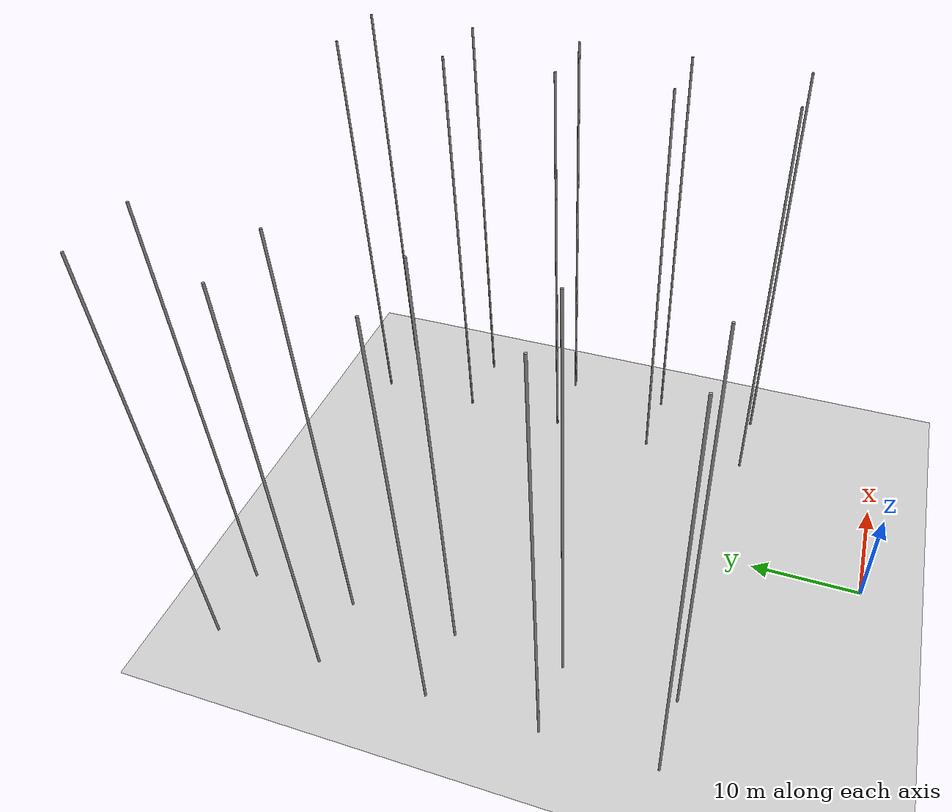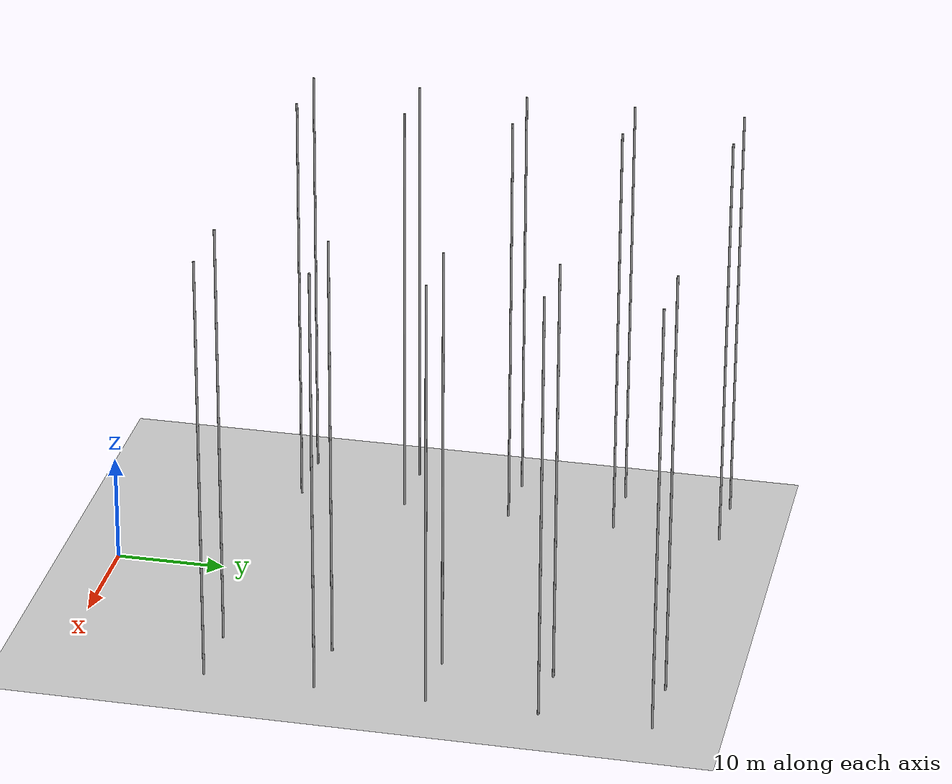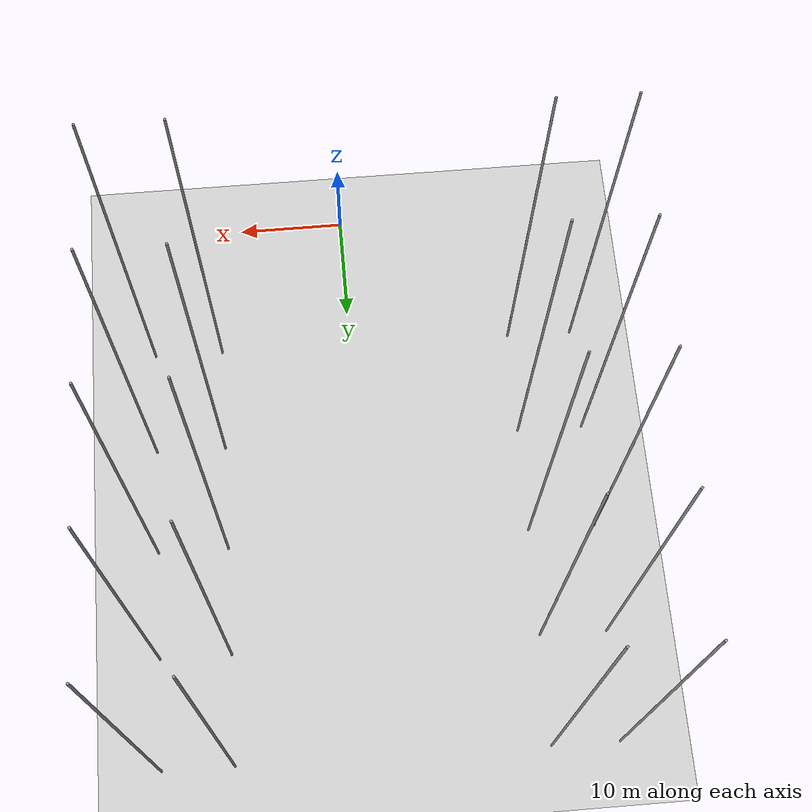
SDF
<sdf version="1.7">
 <world name="default">
  <model name="ground_plane">
   <static>1</static>
   <link name="link">
    <collision name="collision">
     <geometry><plane><normal>0 0 1</normal><size>100 100</size></plane></geometry>
     <surface><friction><ode><mu>100</mu><mu2>50</mu2></ode></friction></surface>
    </collision>
    <visual name="visual">
     <cast_shadows>0</cast_shadows>
     <geometry><plane><normal>0 0 1</normal><size>100 100</size></plane></geometry>
     <material>
      <script><uri>file://media/materials/scripts/gazebo.material</uri><name>Gazebo/Grey</name></script>
     </material>
    </visual>
   </link>
  </model>
  <model name="muchang_s">
   <link name="link_0_clone_clone_0_clone_3">
    <inertial>
     <mass>1</mass>
     <inertia><ixx>0.145833</ixx><ixy>0</ixy><ixz>0</ixz><iyy>0.145833</iyy><iyz>0</iyz><izz>0.125</izz></inertia>
    </inertial>
    <pose>2.77174 57.7468 1.31427 0 -0 0</pose>
    <visual name="visual">
     <geometry><cylinder><radius>0.1</radius><length>40</length></cylinder></geometry>
     <material>
      <lighting>1</lighting>
      <script><uri>file://media/materials/scripts/gazebo.material</uri><name>Gazebo/Grey</name></script>
      <shader type="pixel"><normal_map>__default__</normal_map></shader>
      <ambient>0.3 0.3 0.3 1</ambient>
      <diffuse>0.7 0.7 0.7 1</diffuse>
      <specular>0.01 0.01 0.01 1</specular>
      <emissive>0 0 0 1</emissive>
     </material>
    </visual>
    <collision name="collision">
     <geometry><cylinder><radius>0.1</radius><length>40</length></cylinder></geometry>
     <surface>
      <friction>
       <ode><mu>1</mu><mu2>1</mu2><fdir1>0 0 0</fdir1><slip1>0</slip1><slip2>0</slip2></ode>
       <torsional>
        <coefficient>1</coefficient>
        <patch_radius>0</patch_radius>
        <surface_radius>0</surface_radius>
        <use_patch_radius>1</use_patch_radius>
        <ode><slip>0</slip></ode>
       </torsional>
      </friction>
      <bounce><restitution_coefficient>0</restitution_coefficient><threshold>1e+06</threshold></bounce>
      <contact>
       <collide_without_contact>0</collide_without_contact>
       <collide_without_contact_bitmask>1</collide_without_contact_bitmask>
       <collide_bitmask>1</collide_bitmask>
       <ode>
        <soft_cfm>0</soft_cfm>
        <soft_erp>0.2</soft_erp>
        <kp>1e+13</kp>
        <kd>1</kd>
        <max_vel>0.01</max_vel>
        <min_depth>0</min_depth>
       </ode>
       <bullet>
        <split_impulse>1</split_impulse>
        <split_impulse_penetration_threshold>-0.01</split_impulse_penetration_threshold>
        <soft_cfm>0</soft_cfm>
        <soft_erp>0.2</soft_erp>
        <kp>1e+13</kp>
        <kd>1</kd>
       </bullet>
      </contact>
     </surface>
    </collision>
   </link>
   <link name="link_0_clone_clone_0_clone_4">
    <inertial>
     <mass>1</mass>
     <inertia><ixx>0.145833</ixx><ixy>0</ixy><ixz>0</ixz><iyy>0.145833</iyy><iyz>0</iyz><izz>0.125</izz></inertia>
    </inertial>
    <pose>2.77174 67.7468 1.31427 0 -0 0</pose>
    <visual name="visual">
     <geometry><cylinder><radius>0.1</radius><length>40</length></cylinder></geometry>
     <material>
      <lighting>1</lighting>
      <script><uri>file://media/materials/scripts/gazebo.material</uri><name>Gazebo/Grey</name></script>
      <shader type="pixel"><normal_map>__default__</normal_map></shader>
      <ambient>0.3 0.3 0.3 1</ambient>
      <diffuse>0.7 0.7 0.7 1</diffuse>
      <specular>0.01 0.01 0.01 1</specular>
      <emissive>0 0 0 1</emissive>
     </material>
    </visual>
    <collision name="collision">
     <geometry><cylinder><radius>0.1</radius><length>40</length></cylinder></geometry>
     <surface>
      <friction>
       <ode><mu>1</mu><mu2>1</mu2><fdir1>0 0 0</fdir1><slip1>0</slip1><slip2>0</slip2></ode>
       <torsional>
        <coefficient>1</coefficient>
        <patch_radius>0</patch_radius>
        <surface_radius>0</surface_radius>
        <use_patch_radius>1</use_patch_radius>
        <ode><slip>0</slip></ode>
       </torsional>
      </friction>
      <bounce><restitution_coefficient>0</restitution_coefficient><threshold>1e+06</threshold></bounce>
      <contact>
       <collide_without_contact>0</collide_without_contact>
       <collide_without_contact_bitmask>1</collide_without_contact_bitmask>
       <collide_bitmask>1</collide_bitmask>
       <ode>
        <soft_cfm>0</soft_cfm>
        <soft_erp>0.2</soft_erp>
        <kp>1e+13</kp>
        <kd>1</kd>
        <max_vel>0.01</max_vel>
        <min_depth>0</min_depth>
       </ode>
       <bullet>
        <split_impulse>1</split_impulse>
        <split_impulse_penetration_threshold>-0.01</split_impulse_penetration_threshold>
        <soft_cfm>0</soft_cfm>
        <soft_erp>0.2</soft_erp>
        <kp>1e+13</kp>
        <kd>1</kd>
       </bullet>
      </contact>
     </surface>
    </collision>
   </link>
   <link name="link_0_clone_clone_0_clone_5">
    <inertial>
     <mass>1</mass>
     <inertia><ixx>0.145833</ixx><ixy>0</ixy><ixz>0</ixz><iyy>0.145833</iyy><iyz>0</iyz><izz>0.125</izz></inertia>
    </inertial>
    <pose>2.77174 77.7468 1.31427 0 -0 0</pose>
    <visual name="visual">
     <geometry><cylinder><radius>0.1</radius><length>40</length></cylinder></geometry>
     <material>
      <lighting>1</lighting>
      <script><uri>file://media/materials/scripts/gazebo.material</uri><name>Gazebo/Grey</name></script>
      <shader type="pixel"><normal_map>__default__</normal_map></shader>
      <ambient>0.3 0.3 0.3 1</ambient>
      <diffuse>0.7 0.7 0.7 1</diffuse>
      <specular>0.01 0.01 0.01 1</specular>
      <emissive>0 0 0 1</emissive>
     </material>
    </visual>
    <collision name="collision">
     <geometry><cylinder><radius>0.1</radius><length>40</length></cylinder></geometry>
     <surface>
      <friction>
       <ode><mu>1</mu><mu2>1</mu2><fdir1>0 0 0</fdir1><slip1>0</slip1><slip2>0</slip2></ode>
       <torsional>
        <coefficient>1</coefficient>
        <patch_radius>0</patch_radius>
        <surface_radius>0</surface_radius>
        <use_patch_radius>1</use_patch_radius>
        <ode><slip>0</slip></ode>
       </torsional>
      </friction>
      <bounce><restitution_coefficient>0</restitution_coefficient><threshold>1e+06</threshold></bounce>
      <contact>
       <collide_without_contact>0</collide_without_contact>
       <collide_without_contact_bitmask>1</collide_without_contact_bitmask>
       <collide_bitmask>1</collide_bitmask>
       <ode>
        <soft_cfm>0</soft_cfm>
        <soft_erp>0.2</soft_erp>
        <kp>1e+13</kp>
        <kd>1</kd>
        <max_vel>0.01</max_vel>
        <min_depth>0</min_depth>
       </ode>
       <bullet>
        <split_impulse>1</split_impulse>
        <split_impulse_penetration_threshold>-0.01</split_impulse_penetration_threshold>
        <soft_cfm>0</soft_cfm>
        <soft_erp>0.2</soft_erp>
        <kp>1e+13</kp>
        <kd>1</kd>
       </bullet>
      </contact>
     </surface>
    </collision>
   </link>
   <link name="link_0_clone_clone_0_clone_6">
    <inertial>
     <mass>1</mass>
     <inertia><ixx>0.145833</ixx><ixy>0</ixy><ixz>0</ixz><iyy>0.145833</iyy><iyz>0</iyz><izz>0.125</izz></inertia>
    </inertial>
    <pose>2.77174 87.7468 1.31427 0 -0 0</pose>
    <visual name="visual">
     <geometry><cylinder><radius>0.1</radius><length>40</length></cylinder></geometry>
     <material>
      <lighting>1</lighting>
      <script><uri>file://media/materials/scripts/gazebo.material</uri><name>Gazebo/Grey</name></script>
      <shader type="pixel"><normal_map>__default__</normal_map></shader>
      <ambient>0.3 0.3 0.3 1</ambient>
      <diffuse>0.7 0.7 0.7 1</diffuse>
      <specular>0.01 0.01 0.01 1</specular>
      <emissive>0 0 0 1</emissive>
     </material>
    </visual>
    <collision name="collision">
     <geometry><cylinder><radius>0.1</radius><length>40</length></cylinder></geometry>
     <surface>
      <friction>
       <ode><mu>1</mu><mu2>1</mu2><fdir1>0 0 0</fdir1><slip1>0</slip1><slip2>0</slip2></ode>
       <torsional>
        <coefficient>1</coefficient>
        <patch_radius>0</patch_radius>
        <surface_radius>0</surface_radius>
        <use_patch_radius>1</use_patch_radius>
        <ode><slip>0</slip></ode>
       </torsional>
      </friction>
      <bounce><restitution_coefficient>0</restitution_coefficient><threshold>1e+06</threshold></bounce>
      <contact>
       <collide_without_contact>0</collide_without_contact>
       <collide_without_contact_bitmask>1</collide_without_contact_bitmask>
       <collide_bitmask>1</collide_bitmask>
       <ode>
        <soft_cfm>0</soft_cfm>
        <soft_erp>0.2</soft_erp>
        <kp>1e+13</kp>
        <kd>1</kd>
        <max_vel>0.01</max_vel>
        <min_depth>0</min_depth>
       </ode>
       <bullet>
        <split_impulse>1</split_impulse>
        <split_impulse_penetration_threshold>-0.01</split_impulse_penetration_threshold>
        <soft_cfm>0</soft_cfm>
        <soft_erp>0.2</soft_erp>
        <kp>1e+13</kp>
        <kd>1</kd>
       </bullet>
      </contact>
     </surface>
    </collision>
   </link>
   <link name="link_0_clone_clone_0_clone_7">
    <inertial>
     <mass>1</mass>
     <inertia><ixx>0.145833</ixx><ixy>0</ixy><ixz>0</ixz><iyy>0.145833</iyy><iyz>0</iyz><izz>0.125</izz></inertia>
    </inertial>
    <pose>2.77174 97.7468 1.31427 0 -0 0</pose>
    <visual name="visual">
     <geometry><cylinder><radius>0.1</radius><length>40</length></cylinder></geometry>
     <material>
      <lighting>1</lighting>
      <script><uri>file://media/materials/scripts/gazebo.material</uri><name>Gazebo/Grey</name></script>
      <shader type="pixel"><normal_map>__default__</normal_map></shader>
      <ambient>0.3 0.3 0.3 1</ambient>
      <diffuse>0.7 0.7 0.7 1</diffuse>
      <specular>0.01 0.01 0.01 1</specular>
      <emissive>0 0 0 1</emissive>
     </material>
    </visual>
    <collision name="collision">
     <geometry><cylinder><radius>0.1</radius><length>40</length></cylinder></geometry>
     <surface>
      <friction>
       <ode><mu>1</mu><mu2>1</mu2><fdir1>0 0 0</fdir1><slip1>0</slip1><slip2>0</slip2></ode>
       <torsional>
        <coefficient>1</coefficient>
        <patch_radius>0</patch_radius>
        <surface_radius>0</surface_radius>
        <use_patch_radius>1</use_patch_radius>
        <ode><slip>0</slip></ode>
       </torsional>
      </friction>
      <bounce><restitution_coefficient>0</restitution_coefficient><threshold>1e+06</threshold></bounce>
      <contact>
       <collide_without_contact>0</collide_without_contact>
       <collide_without_contact_bitmask>1</collide_without_contact_bitmask>
       <collide_bitmask>1</collide_bitmask>
       <ode>
        <soft_cfm>0</soft_cfm>
        <soft_erp>0.2</soft_erp>
        <kp>1e+13</kp>
        <kd>1</kd>
        <max_vel>0.01</max_vel>
        <min_depth>0</min_depth>
       </ode>
       <bullet>
        <split_impulse>1</split_impulse>
        <split_impulse_penetration_threshold>-0.01</split_impulse_penetration_threshold>
        <soft_cfm>0</soft_cfm>
        <soft_erp>0.2</soft_erp>
        <kp>1e+13</kp>
        <kd>1</kd>
       </bullet>
      </contact>
     </surface>
    </collision>
   </link>
   <link name="link_0_clone_clone_1_clone_3">
    <inertial>
     <mass>1</mass>
     <inertia><ixx>0.145833</ixx><ixy>0</ixy><ixz>0</ixz><iyy>0.145833</iyy><iyz>0</iyz><izz>0.125</izz></inertia>
    </inertial>
    <pose>-31.6959 57.7468 1.31427 0 -0 0</pose>
    <visual name="visual">
     <geometry><cylinder><radius>0.1</radius><length>40</length></cylinder></geometry>
     <material>
      <lighting>1</lighting>
      <script><uri>file://media/materials/scripts/gazebo.material</uri><name>Gazebo/Grey</name></script>
      <shader type="pixel"><normal_map>__default__</normal_map></shader>
      <ambient>0.3 0.3 0.3 1</ambient>
      <diffuse>0.7 0.7 0.7 1</diffuse>
      <specular>0.01 0.01 0.01 1</specular>
      <emissive>0 0 0 1</emissive>
     </material>
    </visual>
    <collision name="collision">
     <geometry><cylinder><radius>0.1</radius><length>40</length></cylinder></geometry>
     <surface>
      <friction>
       <ode><mu>1</mu><mu2>1</mu2><fdir1>0 0 0</fdir1><slip1>0</slip1><slip2>0</slip2></ode>
       <torsional>
        <coefficient>1</coefficient>
        <patch_radius>0</patch_radius>
        <surface_radius>0</surface_radius>
        <use_patch_radius>1</use_patch_radius>
        <ode><slip>0</slip></ode>
       </torsional>
      </friction>
      <bounce><restitution_coefficient>0</restitution_coefficient><threshold>1e+06</threshold></bounce>
      <contact>
       <collide_without_contact>0</collide_without_contact>
       <collide_without_contact_bitmask>1</collide_without_contact_bitmask>
       <collide_bitmask>1</collide_bitmask>
       <ode>
        <soft_cfm>0</soft_cfm>
        <soft_erp>0.2</soft_erp>
        <kp>1e+13</kp>
        <kd>1</kd>
        <max_vel>0.01</max_vel>
        <min_depth>0</min_depth>
       </ode>
       <bullet>
        <split_impulse>1</split_impulse>
        <split_impulse_penetration_threshold>-0.01</split_impulse_penetration_threshold>
        <soft_cfm>0</soft_cfm>
        <soft_erp>0.2</soft_erp>
        <kp>1e+13</kp>
        <kd>1</kd>
       </bullet>
      </contact>
     </surface>
    </collision>
   </link>
   <link name="link_0_clone_clone_1_clone_4">
    <inertial>
     <mass>1</mass>
     <inertia><ixx>0.145833</ixx><ixy>0</ixy><ixz>0</ixz><iyy>0.145833</iyy><iyz>0</iyz><izz>0.125</izz></inertia>
    </inertial>
    <pose>-31.6959 67.7468 1.31427 0 -0 0</pose>
    <visual name="visual">
     <geometry><cylinder><radius>0.1</radius><length>40</length></cylinder></geometry>
     <material>
      <lighting>1</lighting>
      <script><uri>file://media/materials/scripts/gazebo.material</uri><name>Gazebo/Grey</name></script>
      <shader type="pixel"><normal_map>__default__</normal_map></shader>
      <ambient>0.3 0.3 0.3 1</ambient>
      <diffuse>0.7 0.7 0.7 1</diffuse>
      <specular>0.01 0.01 0.01 1</specular>
      <emissive>0 0 0 1</emissive>
     </material>
    </visual>
    <collision name="collision">
     <geometry><cylinder><radius>0.1</radius><length>40</length></cylinder></geometry>
     <surface>
      <friction>
       <ode><mu>1</mu><mu2>1</mu2><fdir1>0 0 0</fdir1><slip1>0</slip1><slip2>0</slip2></ode>
       <torsional>
        <coefficient>1</coefficient>
        <patch_radius>0</patch_radius>
        <surface_radius>0</surface_radius>
        <use_patch_radius>1</use_patch_radius>
        <ode><slip>0</slip></ode>
       </torsional>
      </friction>
      <bounce><restitution_coefficient>0</restitution_coefficient><threshold>1e+06</threshold></bounce>
      <contact>
       <collide_without_contact>0</collide_without_contact>
       <collide_without_contact_bitmask>1</collide_without_contact_bitmask>
       <collide_bitmask>1</collide_bitmask>
       <ode>
        <soft_cfm>0</soft_cfm>
        <soft_erp>0.2</soft_erp>
        <kp>1e+13</kp>
        <kd>1</kd>
        <max_vel>0.01</max_vel>
        <min_depth>0</min_depth>
       </ode>
       <bullet>
        <split_impulse>1</split_impulse>
        <split_impulse_penetration_threshold>-0.01</split_impulse_penetration_threshold>
        <soft_cfm>0</soft_cfm>
        <soft_erp>0.2</soft_erp>
        <kp>1e+13</kp>
        <kd>1</kd>
       </bullet>
      </contact>
     </surface>
    </collision>
   </link>
   <link name="link_0_clone_clone_1_clone_5">
    <inertial>
     <mass>1</mass>
     <inertia><ixx>0.145833</ixx><ixy>0</ixy><ixz>0</ixz><iyy>0.145833</iyy><iyz>0</iyz><izz>0.125</izz></inertia>
    </inertial>
    <pose>-31.6959 77.7468 1.31427 0 -0 0</pose>
    <visual name="visual">
     <geometry><cylinder><radius>0.1</radius><length>40</length></cylinder></geometry>
     <material>
      <lighting>1</lighting>
      <script><uri>file://media/materials/scripts/gazebo.material</uri><name>Gazebo/Grey</name></script>
      <shader type="pixel"><normal_map>__default__</normal_map></shader>
      <ambient>0.3 0.3 0.3 1</ambient>
      <diffuse>0.7 0.7 0.7 1</diffuse>
      <specular>0.01 0.01 0.01 1</specular>
      <emissive>0 0 0 1</emissive>
     </material>
    </visual>
    <collision name="collision">
     <geometry><cylinder><radius>0.1</radius><length>40</length></cylinder></geometry>
     <surface>
      <friction>
       <ode><mu>1</mu><mu2>1</mu2><fdir1>0 0 0</fdir1><slip1>0</slip1><slip2>0</slip2></ode>
       <torsional>
        <coefficient>1</coefficient>
        <patch_radius>0</patch_radius>
        <surface_radius>0</surface_radius>
        <use_patch_radius>1</use_patch_radius>
        <ode><slip>0</slip></ode>
       </torsional>
      </friction>
      <bounce><restitution_coefficient>0</restitution_coefficient><threshold>1e+06</threshold></bounce>
      <contact>
       <collide_without_contact>0</collide_without_contact>
       <collide_without_contact_bitmask>1</collide_without_contact_bitmask>
       <collide_bitmask>1</collide_bitmask>
       <ode>
        <soft_cfm>0</soft_cfm>
        <soft_erp>0.2</soft_erp>
        <kp>1e+13</kp>
        <kd>1</kd>
        <max_vel>0.01</max_vel>
        <min_depth>0</min_depth>
       </ode>
       <bullet>
        <split_impulse>1</split_impulse>
        <split_impulse_penetration_threshold>-0.01</split_impulse_penetration_threshold>
        <soft_cfm>0</soft_cfm>
        <soft_erp>0.2</soft_erp>
        <kp>1e+13</kp>
        <kd>1</kd>
       </bullet>
      </contact>
     </surface>
    </collision>
   </link>
   <link name="link_0_clone_clone_1_clone_6">
    <inertial>
     <mass>1</mass>
     <inertia><ixx>0.145833</ixx><ixy>0</ixy><ixz>0</ixz><iyy>0.145833</iyy><iyz>0</iyz><izz>0.125</izz></inertia>
    </inertial>
    <pose>-31.6959 87.7468 1.31427 0 -0 0</pose>
    <visual name="visual">
     <geometry><cylinder><radius>0.1</radius><length>40</length></cylinder></geometry>
     <material>
      <lighting>1</lighting>
      <script><uri>file://media/materials/scripts/gazebo.material</uri><name>Gazebo/Grey</name></script>
      <shader type="pixel"><normal_map>__default__</normal_map></shader>
      <ambient>0.3 0.3 0.3 1</ambient>
      <diffuse>0.7 0.7 0.7 1</diffuse>
      <specular>0.01 0.01 0.01 1</specular>
      <emissive>0 0 0 1</emissive>
     </material>
    </visual>
    <collision name="collision">
     <geometry><cylinder><radius>0.1</radius><length>40</length></cylinder></geometry>
     <surface>
      <friction>
       <ode><mu>1</mu><mu2>1</mu2><fdir1>0 0 0</fdir1><slip1>0</slip1><slip2>0</slip2></ode>
       <torsional>
        <coefficient>1</coefficient>
        <patch_radius>0</patch_radius>
        <surface_radius>0</surface_radius>
        <use_patch_radius>1</use_patch_radius>
        <ode><slip>0</slip></ode>
       </torsional>
      </friction>
      <bounce><restitution_coefficient>0</restitution_coefficient><threshold>1e+06</threshold></bounce>
      <contact>
       <collide_without_contact>0</collide_without_contact>
       <collide_without_contact_bitmask>1</collide_without_contact_bitmask>
       <collide_bitmask>1</collide_bitmask>
       <ode>
        <soft_cfm>0</soft_cfm>
        <soft_erp>0.2</soft_erp>
        <kp>1e+13</kp>
        <kd>1</kd>
        <max_vel>0.01</max_vel>
        <min_depth>0</min_depth>
       </ode>
       <bullet>
        <split_impulse>1</split_impulse>
        <split_impulse_penetration_threshold>-0.01</split_impulse_penetration_threshold>
        <soft_cfm>0</soft_cfm>
        <soft_erp>0.2</soft_erp>
        <kp>1e+13</kp>
        <kd>1</kd>
       </bullet>
      </contact>
     </surface>
    </collision>
   </link>
   <link name="link_0_clone_clone_1_clone_6_clone">
    <inertial>
     <mass>1</mass>
     <inertia><ixx>0.145833</ixx><ixy>0</ixy><ixz>0</ixz><iyy>0.145833</iyy><iyz>0</iyz><izz>0.125</izz></inertia>
    </inertial>
    <pose>-31.6959 97.7468 1.31427 0 -0 0</pose>
    <visual name="visual">
     <geometry><cylinder><radius>0.1</radius><length>40</length></cylinder></geometry>
     <material>
      <lighting>1</lighting>
      <script><uri>file://media/materials/scripts/gazebo.material</uri><name>Gazebo/Grey</name></script>
      <shader type="pixel"><normal_map>__default__</normal_map></shader>
      <ambient>0.3 0.3 0.3 1</ambient>
      <diffuse>0.7 0.7 0.7 1</diffuse>
      <specular>0.01 0.01 0.01 1</specular>
      <emissive>0 0 0 1</emissive>
     </material>
    </visual>
    <collision name="collision">
     <geometry><cylinder><radius>0.1</radius><length>40</length></cylinder></geometry>
     <surface>
      <friction>
       <ode><mu>1</mu><mu2>1</mu2><fdir1>0 0 0</fdir1><slip1>0</slip1><slip2>0</slip2></ode>
       <torsional>
        <coefficient>1</coefficient>
        <patch_radius>0</patch_radius>
        <surface_radius>0</surface_radius>
        <use_patch_radius>1</use_patch_radius>
        <ode><slip>0</slip></ode>
       </torsional>
      </friction>
      <bounce><restitution_coefficient>0</restitution_coefficient><threshold>1e+06</threshold></bounce>
      <contact>
       <collide_without_contact>0</collide_without_contact>
       <collide_without_contact_bitmask>1</collide_without_contact_bitmask>
       <collide_bitmask>1</collide_bitmask>
       <ode>
        <soft_cfm>0</soft_cfm>
        <soft_erp>0.2</soft_erp>
        <kp>1e+13</kp>
        <kd>1</kd>
        <max_vel>0.01</max_vel>
        <min_depth>0</min_depth>
       </ode>
       <bullet>
        <split_impulse>1</split_impulse>
        <split_impulse_penetration_threshold>-0.01</split_impulse_penetration_threshold>
        <soft_cfm>0</soft_cfm>
        <soft_erp>0.2</soft_erp>
        <kp>1e+13</kp>
        <kd>1</kd>
       </bullet>
      </contact>
     </surface>
    </collision>
   </link>
   <link name="link_0_clone_clone_5">
    <inertial>
     <mass>1</mass>
     <inertia><ixx>0.145833</ixx><ixy>0</ixy><ixz>0</ixz><iyy>0.145833</iyy><iyz>0</iyz><izz>0.125</izz></inertia>
    </inertial>
    <pose>-37.8115 57.7468 1.31427 0 -0 0</pose>
    <visual name="visual">
     <geometry><cylinder><radius>0.1</radius><length>40</length></cylinder></geometry>
     <material>
      <lighting>1</lighting>
      <script><uri>file://media/materials/scripts/gazebo.material</uri><name>Gazebo/Grey</name></script>
      <shader type="pixel"><normal_map>__default__</normal_map></shader>
      <ambient>0.3 0.3 0.3 1</ambient>
      <diffuse>0.7 0.7 0.7 1</diffuse>
      <specular>0.01 0.01 0.01 1</specular>
      <emissive>0 0 0 1</emissive>
     </material>
    </visual>
    <collision name="collision">
     <geometry><cylinder><radius>0.1</radius><length>40</length></cylinder></geometry>
     <surface>
      <friction>
       <ode><mu>1</mu><mu2>1</mu2><fdir1>0 0 0</fdir1><slip1>0</slip1><slip2>0</slip2></ode>
       <torsional>
        <coefficient>1</coefficient>
        <patch_radius>0</patch_radius>
        <surface_radius>0</surface_radius>
        <use_patch_radius>1</use_patch_radius>
        <ode><slip>0</slip></ode>
       </torsional>
      </friction>
      <bounce><restitution_coefficient>0</restitution_coefficient><threshold>1e+06</threshold></bounce>
      <contact>
       <collide_without_contact>0</collide_without_contact>
       <collide_without_contact_bitmask>1</collide_without_contact_bitmask>
       <collide_bitmask>1</collide_bitmask>
       <ode>
        <soft_cfm>0</soft_cfm>
        <soft_erp>0.2</soft_erp>
        <kp>1e+13</kp>
        <kd>1</kd>
        <max_vel>0.01</max_vel>
        <min_depth>0</min_depth>
       </ode>
       <bullet>
        <split_impulse>1</split_impulse>
        <split_impulse_penetration_threshold>-0.01</split_impulse_penetration_threshold>
        <soft_cfm>0</soft_cfm>
        <soft_erp>0.2</soft_erp>
        <kp>1e+13</kp>
        <kd>1</kd>
       </bullet>
      </contact>
     </surface>
    </collision>
   </link>
   <link name="link_0_clone_clone_6">
    <inertial>
     <mass>1</mass>
     <inertia><ixx>0.145833</ixx><ixy>0</ixy><ixz>0</ixz><iyy>0.145833</iyy><iyz>0</iyz><izz>0.125</izz></inertia>
    </inertial>
    <pose>-37.8115 67.7468 1.31427 0 -0 0</pose>
    <visual name="visual">
     <geometry><cylinder><radius>0.1</radius><length>40</length></cylinder></geometry>
     <material>
      <lighting>1</lighting>
      <script><uri>file://media/materials/scripts/gazebo.material</uri><name>Gazebo/Grey</name></script>
      <shader type="pixel"><normal_map>__default__</normal_map></shader>
      <ambient>0.3 0.3 0.3 1</ambient>
      <diffuse>0.7 0.7 0.7 1</diffuse>
      <specular>0.01 0.01 0.01 1</specular>
      <emissive>0 0 0 1</emissive>
     </material>
    </visual>
    <collision name="collision">
     <geometry><cylinder><radius>0.1</radius><length>40</length></cylinder></geometry>
     <surface>
      <friction>
       <ode><mu>1</mu><mu2>1</mu2><fdir1>0 0 0</fdir1><slip1>0</slip1><slip2>0</slip2></ode>
       <torsional>
        <coefficient>1</coefficient>
        <patch_radius>0</patch_radius>
        <surface_radius>0</surface_radius>
        <use_patch_radius>1</use_patch_radius>
        <ode><slip>0</slip></ode>
       </torsional>
      </friction>
      <bounce><restitution_coefficient>0</restitution_coefficient><threshold>1e+06</threshold></bounce>
      <contact>
       <collide_without_contact>0</collide_without_contact>
       <collide_without_contact_bitmask>1</collide_without_contact_bitmask>
       <collide_bitmask>1</collide_bitmask>
       <ode>
        <soft_cfm>0</soft_cfm>
        <soft_erp>0.2</soft_erp>
        <kp>1e+13</kp>
        <kd>1</kd>
        <max_vel>0.01</max_vel>
        <min_depth>0</min_depth>
       </ode>
       <bullet>
        <split_impulse>1</split_impulse>
        <split_impulse_penetration_threshold>-0.01</split_impulse_penetration_threshold>
        <soft_cfm>0</soft_cfm>
        <soft_erp>0.2</soft_erp>
        <kp>1e+13</kp>
        <kd>1</kd>
       </bullet>
      </contact>
     </surface>
    </collision>
   </link>
   <link name="link_0_clone_clone_7">
    <inertial>
     <mass>1</mass>
     <inertia><ixx>0.145833</ixx><ixy>0</ixy><ixz>0</ixz><iyy>0.145833</iyy><iyz>0</iyz><izz>0.125</izz></inertia>
    </inertial>
    <pose>-37.8115 77.7468 1.31427 0 -0 0</pose>
    <visual name="visual">
     <geometry><cylinder><radius>0.1</radius><length>40</length></cylinder></geometry>
     <material>
      <lighting>1</lighting>
      <script><uri>file://media/materials/scripts/gazebo.material</uri><name>Gazebo/Grey</name></script>
      <shader type="pixel"><normal_map>__default__</normal_map></shader>
      <ambient>0.3 0.3 0.3 1</ambient>
      <diffuse>0.7 0.7 0.7 1</diffuse>
      <specular>0.01 0.01 0.01 1</specular>
      <emissive>0 0 0 1</emissive>
     </material>
    </visual>
    <collision name="collision">
     <geometry><cylinder><radius>0.1</radius><length>40</length></cylinder></geometry>
     <surface>
      <friction>
       <ode><mu>1</mu><mu2>1</mu2><fdir1>0 0 0</fdir1><slip1>0</slip1><slip2>0</slip2></ode>
       <torsional>
        <coefficient>1</coefficient>
        <patch_radius>0</patch_radius>
        <surface_radius>0</surface_radius>
        <use_patch_radius>1</use_patch_radius>
        <ode><slip>0</slip></ode>
       </torsional>
      </friction>
      <bounce><restitution_coefficient>0</restitution_coefficient><threshold>1e+06</threshold></bounce>
      <contact>
       <collide_without_contact>0</collide_without_contact>
       <collide_without_contact_bitmask>1</collide_without_contact_bitmask>
       <collide_bitmask>1</collide_bitmask>
       <ode>
        <soft_cfm>0</soft_cfm>
        <soft_erp>0.2</soft_erp>
        <kp>1e+13</kp>
        <kd>1</kd>
        <max_vel>0.01</max_vel>
        <min_depth>0</min_depth>
       </ode>
       <bullet>
        <split_impulse>1</split_impulse>
        <split_impulse_penetration_threshold>-0.01</split_impulse_penetration_threshold>
        <soft_cfm>0</soft_cfm>
        <soft_erp>0.2</soft_erp>
        <kp>1e+13</kp>
        <kd>1</kd>
       </bullet>
      </contact>
     </surface>
    </collision>
   </link>
   <link name="link_0_clone_clone_8">
    <inertial>
     <mass>1</mass>
     <inertia><ixx>0.145833</ixx><ixy>0</ixy><ixz>0</ixz><iyy>0.145833</iyy><iyz>0</iyz><izz>0.125</izz></inertia>
    </inertial>
    <pose>-37.8115 87.7468 1.31427 0 -0 0</pose>
    <visual name="visual">
     <geometry><cylinder><radius>0.1</radius><length>40</length></cylinder></geometry>
     <material>
      <lighting>1</lighting>
      <script><uri>file://media/materials/scripts/gazebo.material</uri><name>Gazebo/Grey</name></script>
      <shader type="pixel"><normal_map>__default__</normal_map></shader>
      <ambient>0.3 0.3 0.3 1</ambient>
      <diffuse>0.7 0.7 0.7 1</diffuse>
      <specular>0.01 0.01 0.01 1</specular>
      <emissive>0 0 0 1</emissive>
     </material>
    </visual>
    <collision name="collision">
     <geometry><cylinder><radius>0.1</radius><length>40</length></cylinder></geometry>
     <surface>
      <friction>
       <ode><mu>1</mu><mu2>1</mu2><fdir1>0 0 0</fdir1><slip1>0</slip1><slip2>0</slip2></ode>
       <torsional>
        <coefficient>1</coefficient>
        <patch_radius>0</patch_radius>
        <surface_radius>0</surface_radius>
        <use_patch_radius>1</use_patch_radius>
        <ode><slip>0</slip></ode>
       </torsional>
      </friction>
      <bounce><restitution_coefficient>0</restitution_coefficient><threshold>1e+06</threshold></bounce>
      <contact>
       <collide_without_contact>0</collide_without_contact>
       <collide_without_contact_bitmask>1</collide_without_contact_bitmask>
       <collide_bitmask>1</collide_bitmask>
       <ode>
        <soft_cfm>0</soft_cfm>
        <soft_erp>0.2</soft_erp>
        <kp>1e+13</kp>
        <kd>1</kd>
        <max_vel>0.01</max_vel>
        <min_depth>0</min_depth>
       </ode>
       <bullet>
        <split_impulse>1</split_impulse>
        <split_impulse_penetration_threshold>-0.01</split_impulse_penetration_threshold>
        <soft_cfm>0</soft_cfm>
        <soft_erp>0.2</soft_erp>
        <kp>1e+13</kp>
        <kd>1</kd>
       </bullet>
      </contact>
     </surface>
    </collision>
   </link>
   <link name="link_0_clone_clone_9">
    <inertial>
     <mass>1</mass>
     <inertia><ixx>0.145833</ixx><ixy>0</ixy><ixz>0</ixz><iyy>0.145833</iyy><iyz>0</iyz><izz>0.125</izz></inertia>
    </inertial>
    <pose>-37.8115 97.7468 1.31427 0 -0 0</pose>
    <visual name="visual">
     <geometry><cylinder><radius>0.1</radius><length>40</length></cylinder></geometry>
     <material>
      <lighting>1</lighting>
      <script><uri>file://media/materials/scripts/gazebo.material</uri><name>Gazebo/Grey</name></script>
      <shader type="pixel"><normal_map>__default__</normal_map></shader>
      <ambient>0.3 0.3 0.3 1</ambient>
      <diffuse>0.7 0.7 0.7 1</diffuse>
      <specular>0.01 0.01 0.01 1</specular>
      <emissive>0 0 0 1</emissive>
     </material>
    </visual>
    <collision name="collision">
     <geometry><cylinder><radius>0.1</radius><length>40</length></cylinder></geometry>
     <surface>
      <friction>
       <ode><mu>1</mu><mu2>1</mu2><fdir1>0 0 0</fdir1><slip1>0</slip1><slip2>0</slip2></ode>
       <torsional>
        <coefficient>1</coefficient>
        <patch_radius>0</patch_radius>
        <surface_radius>0</surface_radius>
        <use_patch_radius>1</use_patch_radius>
        <ode><slip>0</slip></ode>
       </torsional>
      </friction>
      <bounce><restitution_coefficient>0</restitution_coefficient><threshold>1e+06</threshold></bounce>
      <contact>
       <collide_without_contact>0</collide_without_contact>
       <collide_without_contact_bitmask>1</collide_without_contact_bitmask>
       <collide_bitmask>1</collide_bitmask>
       <ode>
        <soft_cfm>0</soft_cfm>
        <soft_erp>0.2</soft_erp>
        <kp>1e+13</kp>
        <kd>1</kd>
        <max_vel>0.01</max_vel>
        <min_depth>0</min_depth>
       </ode>
       <bullet>
        <split_impulse>1</split_impulse>
        <split_impulse_penetration_threshold>-0.01</split_impulse_penetration_threshold>
        <soft_cfm>0</soft_cfm>
        <soft_erp>0.2</soft_erp>
        <kp>1e+13</kp>
        <kd>1</kd>
       </bullet>
      </contact>
     </surface>
    </collision>
   </link>
   <link name="link_0_clone_clone_clone_0">
    <inertial>
     <mass>1</mass>
     <inertia><ixx>0.145833</ixx><ixy>0</ixy><ixz>0</ixz><iyy>0.145833</iyy><iyz>0</iyz><izz>0.125</izz></inertia>
    </inertial>
    <pose>-3.71609 57.7468 1.31427 0 -0 0</pose>
    <visual name="visual">
     <geometry><cylinder><radius>0.1</radius><length>40</length></cylinder></geometry>
     <material>
      <lighting>1</lighting>
      <script><uri>file://media/materials/scripts/gazebo.material</uri><name>Gazebo/Grey</name></script>
      <shader type="pixel"><normal_map>__default__</normal_map></shader>
      <ambient>0.3 0.3 0.3 1</ambient>
      <diffuse>0.7 0.7 0.7 1</diffuse>
      <specular>0.01 0.01 0.01 1</specular>
      <emissive>0 0 0 1</emissive>
     </material>
    </visual>
    <collision name="collision">
     <geometry><cylinder><radius>0.1</radius><length>40</length></cylinder></geometry>
     <surface>
      <friction>
       <ode><mu>1</mu><mu2>1</mu2><fdir1>0 0 0</fdir1><slip1>0</slip1><slip2>0</slip2></ode>
       <torsional>
        <coefficient>1</coefficient>
        <patch_radius>0</patch_radius>
        <surface_radius>0</surface_radius>
        <use_patch_radius>1</use_patch_radius>
        <ode><slip>0</slip></ode>
       </torsional>
      </friction>
      <bounce><restitution_coefficient>0</restitution_coefficient><threshold>1e+06</threshold></bounce>
      <contact>
       <collide_without_contact>0</collide_without_contact>
       <collide_without_contact_bitmask>1</collide_without_contact_bitmask>
       <collide_bitmask>1</collide_bitmask>
       <ode>
        <soft_cfm>0</soft_cfm>
        <soft_erp>0.2</soft_erp>
        <kp>1e+13</kp>
        <kd>1</kd>
        <max_vel>0.01</max_vel>
        <min_depth>0</min_depth>
       </ode>
       <bullet>
        <split_impulse>1</split_impulse>
        <split_impulse_penetration_threshold>-0.01</split_impulse_penetration_threshold>
        <soft_cfm>0</soft_cfm>
        <soft_erp>0.2</soft_erp>
        <kp>1e+13</kp>
        <kd>1</kd>
       </bullet>
      </contact>
     </surface>
    </collision>
   </link>
   <link name="link_0_clone_clone_clone_1">
    <inertial>
     <mass>1</mass>
     <inertia><ixx>0.145833</ixx><ixy>0</ixy><ixz>0</ixz><iyy>0.145833</iyy><iyz>0</iyz><izz>0.125</izz></inertia>
    </inertial>
    <pose>-3.71609 67.7468 1.31427 0 -0 0</pose>
    <visual name="visual">
     <geometry><cylinder><radius>0.1</radius><length>40</length></cylinder></geometry>
     <material>
      <lighting>1</lighting>
      <script><uri>file://media/materials/scripts/gazebo.material</uri><name>Gazebo/Grey</name></script>
      <shader type="pixel"><normal_map>__default__</normal_map></shader>
      <ambient>0.3 0.3 0.3 1</ambient>
      <diffuse>0.7 0.7 0.7 1</diffuse>
      <specular>0.01 0.01 0.01 1</specular>
      <emissive>0 0 0 1</emissive>
     </material>
    </visual>
    <collision name="collision">
     <geometry><cylinder><radius>0.1</radius><length>40</length></cylinder></geometry>
     <surface>
      <friction>
       <ode><mu>1</mu><mu2>1</mu2><fdir1>0 0 0</fdir1><slip1>0</slip1><slip2>0</slip2></ode>
       <torsional>
        <coefficient>1</coefficient>
        <patch_radius>0</patch_radius>
        <surface_radius>0</surface_radius>
        <use_patch_radius>1</use_patch_radius>
        <ode><slip>0</slip></ode>
       </torsional>
      </friction>
      <bounce><restitution_coefficient>0</restitution_coefficient><threshold>1e+06</threshold></bounce>
      <contact>
       <collide_without_contact>0</collide_without_contact>
       <collide_without_contact_bitmask>1</collide_without_contact_bitmask>
       <collide_bitmask>1</collide_bitmask>
       <ode>
        <soft_cfm>0</soft_cfm>
        <soft_erp>0.2</soft_erp>
        <kp>1e+13</kp>
        <kd>1</kd>
        <max_vel>0.01</max_vel>
        <min_depth>0</min_depth>
       </ode>
       <bullet>
        <split_impulse>1</split_impulse>
        <split_impulse_penetration_threshold>-0.01</split_impulse_penetration_threshold>
        <soft_cfm>0</soft_cfm>
        <soft_erp>0.2</soft_erp>
        <kp>1e+13</kp>
        <kd>1</kd>
       </bullet>
      </contact>
     </surface>
    </collision>
   </link>
   <link name="link_0_clone_clone_clone_1_clone">
    <inertial>
     <mass>1</mass>
     <inertia><ixx>0.145833</ixx><ixy>0</ixy><ixz>0</ixz><iyy>0.145833</iyy><iyz>0</iyz><izz>0.125</izz></inertia>
    </inertial>
    <pose>-3.71609 77.7468 1.31427 0 -0 0</pose>
    <visual name="visual">
     <geometry><cylinder><radius>0.1</radius><length>40</length></cylinder></geometry>
     <material>
      <lighting>1</lighting>
      <script><uri>file://media/materials/scripts/gazebo.material</uri><name>Gazebo/Grey</name></script>
      <shader type="pixel"><normal_map>__default__</normal_map></shader>
      <ambient>0.3 0.3 0.3 1</ambient>
      <diffuse>0.7 0.7 0.7 1</diffuse>
      <specular>0.01 0.01 0.01 1</specular>
      <emissive>0 0 0 1</emissive>
     </material>
    </visual>
    <collision name="collision">
     <geometry><cylinder><radius>0.1</radius><length>40</length></cylinder></geometry>
     <surface>
      <friction>
       <ode><mu>1</mu><mu2>1</mu2><fdir1>0 0 0</fdir1><slip1>0</slip1><slip2>0</slip2></ode>
       <torsional>
        <coefficient>1</coefficient>
        <patch_radius>0</patch_radius>
        <surface_radius>0</surface_radius>
        <use_patch_radius>1</use_patch_radius>
        <ode><slip>0</slip></ode>
       </torsional>
      </friction>
      <bounce><restitution_coefficient>0</restitution_coefficient><threshold>1e+06</threshold></bounce>
      <contact>
       <collide_without_contact>0</collide_without_contact>
       <collide_without_contact_bitmask>1</collide_without_contact_bitmask>
       <collide_bitmask>1</collide_bitmask>
       <ode>
        <soft_cfm>0</soft_cfm>
        <soft_erp>0.2</soft_erp>
        <kp>1e+13</kp>
        <kd>1</kd>
        <max_vel>0.01</max_vel>
        <min_depth>0</min_depth>
       </ode>
       <bullet>
        <split_impulse>1</split_impulse>
        <split_impulse_penetration_threshold>-0.01</split_impulse_penetration_threshold>
        <soft_cfm>0</soft_cfm>
        <soft_erp>0.2</soft_erp>
        <kp>1e+13</kp>
        <kd>1</kd>
       </bullet>
      </contact>
     </surface>
    </collision>
   </link>
   <link name="link_0_clone_clone_clone_1_clone_clone">
    <inertial>
     <mass>1</mass>
     <inertia><ixx>0.145833</ixx><ixy>0</ixy><ixz>0</ixz><iyy>0.145833</iyy><iyz>0</iyz><izz>0.125</izz></inertia>
    </inertial>
    <pose>-3.71609 87.7468 1.31427 0 -0 0</pose>
    <visual name="visual">
     <geometry><cylinder><radius>0.1</radius><length>40</length></cylinder></geometry>
     <material>
      <lighting>1</lighting>
      <script><uri>file://media/materials/scripts/gazebo.material</uri><name>Gazebo/Grey</name></script>
      <shader type="pixel"><normal_map>__default__</normal_map></shader>
      <ambient>0.3 0.3 0.3 1</ambient>
      <diffuse>0.7 0.7 0.7 1</diffuse>
      <specular>0.01 0.01 0.01 1</specular>
      <emissive>0 0 0 1</emissive>
     </material>
    </visual>
    <collision name="collision">
     <geometry><cylinder><radius>0.1</radius><length>40</length></cylinder></geometry>
     <surface>
      <friction>
       <ode><mu>1</mu><mu2>1</mu2><fdir1>0 0 0</fdir1><slip1>0</slip1><slip2>0</slip2></ode>
       <torsional>
        <coefficient>1</coefficient>
        <patch_radius>0</patch_radius>
        <surface_radius>0</surface_radius>
        <use_patch_radius>1</use_patch_radius>
        <ode><slip>0</slip></ode>
       </torsional>
      </friction>
      <bounce><restitution_coefficient>0</restitution_coefficient><threshold>1e+06</threshold></bounce>
      <contact>
       <collide_without_contact>0</collide_without_contact>
       <collide_without_contact_bitmask>1</collide_without_contact_bitmask>
       <collide_bitmask>1</collide_bitmask>
       <ode>
        <soft_cfm>0</soft_cfm>
        <soft_erp>0.2</soft_erp>
        <kp>1e+13</kp>
        <kd>1</kd>
        <max_vel>0.01</max_vel>
        <min_depth>0</min_depth>
       </ode>
       <bullet>
        <split_impulse>1</split_impulse>
        <split_impulse_penetration_threshold>-0.01</split_impulse_penetration_threshold>
        <soft_cfm>0</soft_cfm>
        <soft_erp>0.2</soft_erp>
        <kp>1e+13</kp>
        <kd>1</kd>
       </bullet>
      </contact>
     </surface>
    </collision>
   </link>
   <link name="link_0_clone_clone_clone_1_clone_clone_0">
    <inertial>
     <mass>1</mass>
     <inertia><ixx>0.145833</ixx><ixy>0</ixy><ixz>0</ixz><iyy>0.145833</iyy><iyz>0</iyz><izz>0.125</izz></inertia>
    </inertial>
    <pose>-3.71609 97.7468 1.31427 0 -0 0</pose>
    <visual name="visual">
     <geometry><cylinder><radius>0.1</radius><length>40</length></cylinder></geometry>
     <material>
      <lighting>1</lighting>
      <script><uri>file://media/materials/scripts/gazebo.material</uri><name>Gazebo/Grey</name></script>
      <shader type="pixel"><normal_map>__default__</normal_map></shader>
      <ambient>0.3 0.3 0.3 1</ambient>
      <diffuse>0.7 0.7 0.7 1</diffuse>
      <specular>0.01 0.01 0.01 1</specular>
      <emissive>0 0 0 1</emissive>
     </material>
    </visual>
    <collision name="collision">
     <geometry><cylinder><radius>0.1</radius><length>40</length></cylinder></geometry>
     <surface>
      <friction>
       <ode><mu>1</mu><mu2>1</mu2><fdir1>0 0 0</fdir1><slip1>0</slip1><slip2>0</slip2></ode>
       <torsional>
        <coefficient>1</coefficient>
        <patch_radius>0</patch_radius>
        <surface_radius>0</surface_radius>
        <use_patch_radius>1</use_patch_radius>
        <ode><slip>0</slip></ode>
       </torsional>
      </friction>
      <bounce><restitution_coefficient>0</restitution_coefficient><threshold>1e+06</threshold></bounce>
      <contact>
       <collide_without_contact>0</collide_without_contact>
       <collide_without_contact_bitmask>1</collide_without_contact_bitmask>
       <collide_bitmask>1</collide_bitmask>
       <ode>
        <soft_cfm>0</soft_cfm>
        <soft_erp>0.2</soft_erp>
        <kp>1e+13</kp>
        <kd>1</kd>
        <max_vel>0.01</max_vel>
        <min_depth>0</min_depth>
       </ode>
       <bullet>
        <split_impulse>1</split_impulse>
        <split_impulse_penetration_threshold>-0.01</split_impulse_penetration_threshold>
        <soft_cfm>0</soft_cfm>
        <soft_erp>0.2</soft_erp>
        <kp>1e+13</kp>
        <kd>1</kd>
       </bullet>
      </contact>
     </surface>
    </collision>
   </link>
   <static>0</static>
   <pose>15.3479 -44.5906 18.6857 -1e-06 0 -0.014329</pose>
  </model>
 </world>
</sdf>
